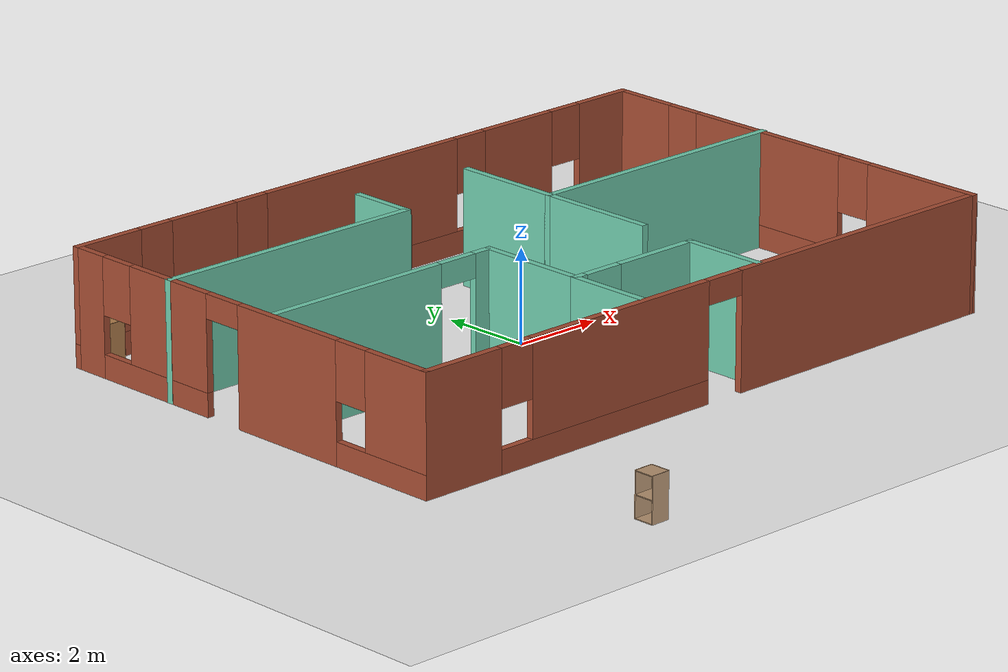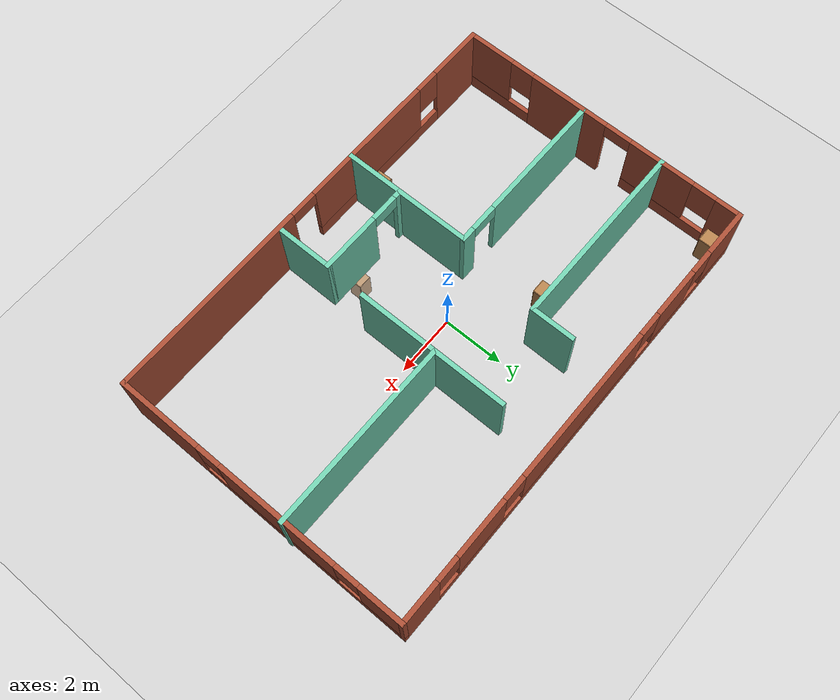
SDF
<sdf version="1.6">
 <world name="default">
  <model name="ground_plane">
   <static>1</static>
   <link name="link">
    <collision name="collision">
     <geometry><plane><normal>0 0 1</normal><size>100 100</size></plane></geometry>
     <surface><friction><ode><mu>100</mu><mu2>50</mu2></ode></friction></surface>
    </collision>
    <visual name="visual">
     <cast_shadows>0</cast_shadows>
     <geometry><plane><normal>0 0 1</normal><size>100 100</size></plane></geometry>
     <material>
      <script><uri>file://media/materials/scripts/gazebo.material</uri><name>Gazebo/Grey</name></script>
     </material>
    </visual>
   </link>
  </model>
  <model name="cabinet_1">
   <static>1</static>
   <link name="cabinet_bottom_plate">
    <inertial>
     <pose>0 0 -1 0 -0 0</pose>
     <inertia><ixx>2.05</ixx><ixy>0</ixy><ixz>0</ixz><iyy>2.05</iyy><iyz>0</iyz><izz>2.05</izz></inertia>
     <mass>25</mass>
    </inertial>
    <collision name="cabinet_bottom_plate_geom">
     <pose>0 0 0.01 0 -0 0</pose>
     <geometry><box><size>0.45 0.45 0.02</size></box></geometry>
    </collision>
    <visual name="cabinet_bottom_plate_geom_visual">
     <pose>0 0 0.01 0 -0 0</pose>
     <geometry><box><size>0.45 0.45 0.02</size></box></geometry>
     <material>
      <script><uri>file://media/materials/scripts/gazebo.material</uri><name>Gazebo/Wood</name></script>
     </material>
    </visual>
    <collision name="cabinet_bottom_plate_geom_cabinet_back_plate">
     <pose>0.235 0 0.51 0 -0 0</pose>
     <geometry><box><size>0.02 0.45 1.02</size></box></geometry>
    </collision>
    <visual name="cabinet_bottom_plate_geom_cabinet_back_plate_visual">
     <pose>0.235 0 0.51 0 -0 0</pose>
     <geometry><box><size>0.02 0.45 1.02</size></box></geometry>
     <material>
      <script><uri>file://media/materials/scripts/gazebo.material</uri><name>Gazebo/Wood</name></script>
     </material>
    </visual>
    <collision name="cabinet_bottom_plate_geom_cabinet_left_plate">
     <pose>0 0.235 0.51 0 -0 0</pose>
     <geometry><box><size>0.45 0.02 1.02</size></box></geometry>
    </collision>
    <visual name="cabinet_bottom_plate_geom_cabinet_left_plate_visual">
     <pose>0 0.235 0.51 0 -0 0</pose>
     <geometry><box><size>0.45 0.02 1.02</size></box></geometry>
     <material>
      <script><uri>file://media/materials/scripts/gazebo.material</uri><name>Gazebo/Wood</name></script>
     </material>
    </visual>
    <collision name="cabinet_bottom_plate_geom_cabinet_middle_plate">
     <pose>0 0 0.51 0 -0 0</pose>
     <geometry><box><size>0.45 0.45 0.02</size></box></geometry>
    </collision>
    <visual name="cabinet_bottom_plate_geom_cabinet_middle_plate_visual">
     <pose>0 0 0.51 0 -0 0</pose>
     <geometry><box><size>0.45 0.45 0.02</size></box></geometry>
     <material>
      <script><uri>file://media/materials/scripts/gazebo.material</uri><name>Gazebo/Wood</name></script>
     </material>
    </visual>
    <collision name="cabinet_bottom_plate_geom_cabinet_right_plate">
     <pose>0 -0.235 0.51 0 -0 0</pose>
     <geometry><box><size>0.45 0.02 1.02</size></box></geometry>
    </collision>
    <visual name="cabinet_bottom_plate_geom_cabinet_right_plate_visual">
     <pose>0 -0.235 0.51 0 -0 0</pose>
     <geometry><box><size>0.45 0.02 1.02</size></box></geometry>
     <material>
      <script><uri>file://media/materials/scripts/gazebo.material</uri><name>Gazebo/Wood</name></script>
     </material>
    </visual>
    <collision name="cabinet_bottom_plate_geom_cabinet_top_plate">
     <pose>0 0 1.01 0 -0 0</pose>
     <geometry><box><size>0.45 0.45 0.02</size></box></geometry>
    </collision>
    <visual name="cabinet_bottom_plate_geom_cabinet_top_plate_visual">
     <pose>0 0 1.01 0 -0 0</pose>
     <geometry><box><size>0.45 0.45 0.02</size></box></geometry>
     <material>
      <script><uri>file://media/materials/scripts/gazebo.material</uri><name>Gazebo/Wood</name></script>
     </material>
    </visual>
   </link>
   <pose>-6.76231 4.55095 0 0 -0 0</pose>
  </model>
  <model name="cabinet_2">
   <static>1</static>
   <link name="cabinet_bottom_plate">
    <inertial>
     <pose>0 0 -1 0 -0 0</pose>
     <inertia><ixx>2.05</ixx><ixy>0</ixy><ixz>0</ixz><iyy>2.05</iyy><iyz>0</iyz><izz>2.05</izz></inertia>
     <mass>25</mass>
    </inertial>
    <collision name="cabinet_bottom_plate_geom">
     <pose>0 0 0.01 0 -0 0</pose>
     <geometry><box><size>0.45 0.45 0.02</size></box></geometry>
    </collision>
    <visual name="cabinet_bottom_plate_geom_visual">
     <pose>0 0 0.01 0 -0 0</pose>
     <geometry><box><size>0.45 0.45 0.02</size></box></geometry>
     <material>
      <script><uri>file://media/materials/scripts/gazebo.material</uri><name>Gazebo/Wood</name></script>
     </material>
    </visual>
    <collision name="cabinet_bottom_plate_geom_cabinet_back_plate">
     <pose>0.235 0 0.51 0 -0 0</pose>
     <geometry><box><size>0.02 0.45 1.02</size></box></geometry>
    </collision>
    <visual name="cabinet_bottom_plate_geom_cabinet_back_plate_visual">
     <pose>0.235 0 0.51 0 -0 0</pose>
     <geometry><box><size>0.02 0.45 1.02</size></box></geometry>
     <material>
      <script><uri>file://media/materials/scripts/gazebo.material</uri><name>Gazebo/Wood</name></script>
     </material>
    </visual>
    <collision name="cabinet_bottom_plate_geom_cabinet_left_plate">
     <pose>0 0.235 0.51 0 -0 0</pose>
     <geometry><box><size>0.45 0.02 1.02</size></box></geometry>
    </collision>
    <visual name="cabinet_bottom_plate_geom_cabinet_left_plate_visual">
     <pose>0 0.235 0.51 0 -0 0</pose>
     <geometry><box><size>0.45 0.02 1.02</size></box></geometry>
     <material>
      <script><uri>file://media/materials/scripts/gazebo.material</uri><name>Gazebo/Wood</name></script>
     </material>
    </visual>
    <collision name="cabinet_bottom_plate_geom_cabinet_middle_plate">
     <pose>0 0 0.51 0 -0 0</pose>
     <geometry><box><size>0.45 0.45 0.02</size></box></geometry>
    </collision>
    <visual name="cabinet_bottom_plate_geom_cabinet_middle_plate_visual">
     <pose>0 0 0.51 0 -0 0</pose>
     <geometry><box><size>0.45 0.45 0.02</size></box></geometry>
     <material>
      <script><uri>file://media/materials/scripts/gazebo.material</uri><name>Gazebo/Wood</name></script>
     </material>
    </visual>
    <collision name="cabinet_bottom_plate_geom_cabinet_right_plate">
     <pose>0 -0.235 0.51 0 -0 0</pose>
     <geometry><box><size>0.45 0.02 1.02</size></box></geometry>
    </collision>
    <visual name="cabinet_bottom_plate_geom_cabinet_right_plate_visual">
     <pose>0 -0.235 0.51 0 -0 0</pose>
     <geometry><box><size>0.45 0.02 1.02</size></box></geometry>
     <material>
      <script><uri>file://media/materials/scripts/gazebo.material</uri><name>Gazebo/Wood</name></script>
     </material>
    </visual>
    <collision name="cabinet_bottom_plate_geom_cabinet_top_plate">
     <pose>0 0 1.01 0 -0 0</pose>
     <geometry><box><size>0.45 0.45 0.02</size></box></geometry>
    </collision>
    <visual name="cabinet_bottom_plate_geom_cabinet_top_plate_visual">
     <pose>0 0 1.01 0 -0 0</pose>
     <geometry><box><size>0.45 0.45 0.02</size></box></geometry>
     <material>
      <script><uri>file://media/materials/scripts/gazebo.material</uri><name>Gazebo/Wood</name></script>
     </material>
    </visual>
   </link>
   <pose>-1.99688 -4.30391 0 0 -0 0</pose>
  </model>
  <model name="cabinet_3">
   <static>1</static>
   <link name="cabinet_bottom_plate">
    <inertial>
     <pose>0 0 -1 0 -0 0</pose>
     <inertia><ixx>2.05</ixx><ixy>0</ixy><ixz>0</ixz><iyy>2.05</iyy><iyz>0</iyz><izz>2.05</izz></inertia>
     <mass>25</mass>
    </inertial>
    <collision name="cabinet_bottom_plate_geom">
     <pose>0 0 0.01 0 -0 0</pose>
     <geometry><box><size>0.45 0.45 0.02</size></box></geometry>
    </collision>
    <visual name="cabinet_bottom_plate_geom_visual">
     <pose>0 0 0.01 0 -0 0</pose>
     <geometry><box><size>0.45 0.45 0.02</size></box></geometry>
     <material>
      <script><uri>file://media/materials/scripts/gazebo.material</uri><name>Gazebo/Wood</name></script>
     </material>
    </visual>
    <collision name="cabinet_bottom_plate_geom_cabinet_back_plate">
     <pose>0.235 0 0.51 0 -0 0</pose>
     <geometry><box><size>0.02 0.45 1.02</size></box></geometry>
    </collision>
    <visual name="cabinet_bottom_plate_geom_cabinet_back_plate_visual">
     <pose>0.235 0 0.51 0 -0 0</pose>
     <geometry><box><size>0.02 0.45 1.02</size></box></geometry>
     <material>
      <script><uri>file://media/materials/scripts/gazebo.material</uri><name>Gazebo/Wood</name></script>
     </material>
    </visual>
    <collision name="cabinet_bottom_plate_geom_cabinet_left_plate">
     <pose>0 0.235 0.51 0 -0 0</pose>
     <geometry><box><size>0.45 0.02 1.02</size></box></geometry>
    </collision>
    <visual name="cabinet_bottom_plate_geom_cabinet_left_plate_visual">
     <pose>0 0.235 0.51 0 -0 0</pose>
     <geometry><box><size>0.45 0.02 1.02</size></box></geometry>
     <material>
      <script><uri>file://media/materials/scripts/gazebo.material</uri><name>Gazebo/Wood</name></script>
     </material>
    </visual>
    <collision name="cabinet_bottom_plate_geom_cabinet_middle_plate">
     <pose>0 0 0.51 0 -0 0</pose>
     <geometry><box><size>0.45 0.45 0.02</size></box></geometry>
    </collision>
    <visual name="cabinet_bottom_plate_geom_cabinet_middle_plate_visual">
     <pose>0 0 0.51 0 -0 0</pose>
     <geometry><box><size>0.45 0.45 0.02</size></box></geometry>
     <material>
      <script><uri>file://media/materials/scripts/gazebo.material</uri><name>Gazebo/Wood</name></script>
     </material>
    </visual>
    <collision name="cabinet_bottom_plate_geom_cabinet_right_plate">
     <pose>0 -0.235 0.51 0 -0 0</pose>
     <geometry><box><size>0.45 0.02 1.02</size></box></geometry>
    </collision>
    <visual name="cabinet_bottom_plate_geom_cabinet_right_plate_visual">
     <pose>0 -0.235 0.51 0 -0 0</pose>
     <geometry><box><size>0.45 0.02 1.02</size></box></geometry>
     <material>
      <script><uri>file://media/materials/scripts/gazebo.material</uri><name>Gazebo/Wood</name></script>
     </material>
    </visual>
    <collision name="cabinet_bottom_plate_geom_cabinet_top_plate">
     <pose>0 0 1.01 0 -0 0</pose>
     <geometry><box><size>0.45 0.45 0.02</size></box></geometry>
    </collision>
    <visual name="cabinet_bottom_plate_geom_cabinet_top_plate_visual">
     <pose>0 0 1.01 0 -0 0</pose>
     <geometry><box><size>0.45 0.45 0.02</size></box></geometry>
     <material>
      <script><uri>file://media/materials/scripts/gazebo.material</uri><name>Gazebo/Wood</name></script>
     </material>
    </visual>
   </link>
   <pose>0.054953 -3.59239 -2.70001 0 -0 0</pose>
  </model>
  <model name="cabinet_8">
   <static>1</static>
   <link name="cabinet_bottom_plate">
    <inertial>
     <pose>0 0 -1 0 -0 0</pose>
     <inertia><ixx>2.05</ixx><ixy>0</ixy><ixz>0</ixz><iyy>2.05</iyy><iyz>0</iyz><izz>2.05</izz></inertia>
     <mass>25</mass>
    </inertial>
    <collision name="cabinet_bottom_plate_geom">
     <pose>0 0 0.01 0 -0 0</pose>
     <geometry><box><size>0.45 0.45 0.02</size></box></geometry>
    </collision>
    <visual name="cabinet_bottom_plate_geom_visual">
     <pose>0 0 0.01 0 -0 0</pose>
     <geometry><box><size>0.45 0.45 0.02</size></box></geometry>
     <material>
      <script><uri>file://media/materials/scripts/gazebo.material</uri><name>Gazebo/Wood</name></script>
     </material>
    </visual>
    <collision name="cabinet_bottom_plate_geom_cabinet_back_plate">
     <pose>0.235 0 0.51 0 -0 0</pose>
     <geometry><box><size>0.02 0.45 1.02</size></box></geometry>
    </collision>
    <visual name="cabinet_bottom_plate_geom_cabinet_back_plate_visual">
     <pose>0.235 0 0.51 0 -0 0</pose>
     <geometry><box><size>0.02 0.45 1.02</size></box></geometry>
     <material>
      <script><uri>file://media/materials/scripts/gazebo.material</uri><name>Gazebo/Wood</name></script>
     </material>
    </visual>
    <collision name="cabinet_bottom_plate_geom_cabinet_left_plate">
     <pose>0 0.235 0.51 0 -0 0</pose>
     <geometry><box><size>0.45 0.02 1.02</size></box></geometry>
    </collision>
    <visual name="cabinet_bottom_plate_geom_cabinet_left_plate_visual">
     <pose>0 0.235 0.51 0 -0 0</pose>
     <geometry><box><size>0.45 0.02 1.02</size></box></geometry>
     <material>
      <script><uri>file://media/materials/scripts/gazebo.material</uri><name>Gazebo/Wood</name></script>
     </material>
    </visual>
    <collision name="cabinet_bottom_plate_geom_cabinet_middle_plate">
     <pose>0 0 0.51 0 -0 0</pose>
     <geometry><box><size>0.45 0.45 0.02</size></box></geometry>
    </collision>
    <visual name="cabinet_bottom_plate_geom_cabinet_middle_plate_visual">
     <pose>0 0 0.51 0 -0 0</pose>
     <geometry><box><size>0.45 0.45 0.02</size></box></geometry>
     <material>
      <script><uri>file://media/materials/scripts/gazebo.material</uri><name>Gazebo/Wood</name></script>
     </material>
    </visual>
    <collision name="cabinet_bottom_plate_geom_cabinet_right_plate">
     <pose>0 -0.235 0.51 0 -0 0</pose>
     <geometry><box><size>0.45 0.02 1.02</size></box></geometry>
    </collision>
    <visual name="cabinet_bottom_plate_geom_cabinet_right_plate_visual">
     <pose>0 -0.235 0.51 0 -0 0</pose>
     <geometry><box><size>0.45 0.02 1.02</size></box></geometry>
     <material>
      <script><uri>file://media/materials/scripts/gazebo.material</uri><name>Gazebo/Wood</name></script>
     </material>
    </visual>
    <collision name="cabinet_bottom_plate_geom_cabinet_top_plate">
     <pose>0 0 1.01 0 -0 0</pose>
     <geometry><box><size>0.45 0.45 0.02</size></box></geometry>
    </collision>
    <visual name="cabinet_bottom_plate_geom_cabinet_top_plate_visual">
     <pose>0 0 1.01 0 -0 0</pose>
     <geometry><box><size>0.45 0.45 0.02</size></box></geometry>
     <material>
      <script><uri>file://media/materials/scripts/gazebo.material</uri><name>Gazebo/Wood</name></script>
     </material>
    </visual>
   </link>
   <pose>-2.26343 1.80425 0 0 -0 0</pose>
  </model>
  <model name="buildingV1">
   <pose>0.35184 0.049711 0 0 -0 0</pose>
   <link name="Wall_22">
    <pose>-7.44478 0 0 0 0 -1.57075</pose>
    <visual name="Wall_22_Visual_0">
     <pose>-4.55966 0 1.25 0 -0 0</pose>
     <geometry><box><size>0.881202 0.15 2.5</size></box></geometry>
     <material>
      <script><uri>file://media/materials/scripts/gazebo.material</uri><name>Gazebo/Bricks</name></script>
      <ambient>0.435294 0.796078 0.67451 1</ambient>
     </material>
     <meta><layer>0</layer></meta>
    </visual>
    <collision name="Wall_22_Collision_0">
     <geometry><box><size>0.881202 0.15 2.5</size></box></geometry>
     <pose>-4.55966 0 1.25 0 -0 0</pose>
    </collision>
    <visual name="Wall_22_Visual_1">
     <pose>1.18623 0 1.25 0 -0 0</pose>
     <geometry><box><size>2.73935 0.15 2.5</size></box></geometry>
     <material>
      <script><uri>file://media/materials/scripts/gazebo.material</uri><name>Gazebo/Bricks</name></script>
      <ambient>0.435294 0.796078 0.67451 1</ambient>
     </material>
     <meta><layer>0</layer></meta>
    </visual>
    <collision name="Wall_22_Collision_1">
     <geometry><box><size>2.73935 0.15 2.5</size></box></geometry>
     <pose>1.18623 0 1.25 0 -0 0</pose>
    </collision>
    <visual name="Wall_22_Visual_2">
     <pose>-2.60125 0 0.25 0 -0 0</pose>
     <geometry><box><size>3.03561 0.15 0.5</size></box></geometry>
     <material>
      <script><uri>file://media/materials/scripts/gazebo.material</uri><name>Gazebo/Bricks</name></script>
      <ambient>0.435294 0.796078 0.67451 1</ambient>
     </material>
     <meta><layer>0</layer></meta>
    </visual>
    <collision name="Wall_22_Collision_2">
     <geometry><box><size>3.03561 0.15 0.5</size></box></geometry>
     <pose>-2.60125 0 0.25 0 -0 0</pose>
    </collision>
    <visual name="Wall_22_Visual_3">
     <pose>3.77808 0 0.25 0 -0 0</pose>
     <geometry><box><size>2.44435 0.15 0.5</size></box></geometry>
     <material>
      <script><uri>file://media/materials/scripts/gazebo.material</uri><name>Gazebo/Bricks</name></script>
      <ambient>0.435294 0.796078 0.67451 1</ambient>
     </material>
     <meta><layer>0</layer></meta>
    </visual>
    <collision name="Wall_22_Collision_3">
     <geometry><box><size>2.44435 0.15 0.5</size></box></geometry>
     <pose>3.77808 0 0.25 0 -0 0</pose>
    </collision>
    <visual name="Wall_22_Visual_4">
     <pose>-2.20125 0 1.5 0 -0 0</pose>
     <geometry><box><size>2.23561 0.15 2</size></box></geometry>
     <material>
      <script><uri>file://media/materials/scripts/gazebo.material</uri><name>Gazebo/Bricks</name></script>
      <ambient>0.435294 0.796078 0.67451 1</ambient>
     </material>
     <meta><layer>0</layer></meta>
    </visual>
    <collision name="Wall_22_Collision_4">
     <geometry><box><size>2.23561 0.15 2</size></box></geometry>
     <pose>-2.20125 0 1.5 0 -0 0</pose>
    </collision>
    <visual name="Wall_22_Visual_5">
     <pose>-2.20125 0 1.5 0 -0 0</pose>
     <geometry><box><size>2.23561 0.15 2</size></box></geometry>
     <material>
      <script><uri>file://media/materials/scripts/gazebo.material</uri><name>Gazebo/Bricks</name></script>
      <ambient>0.435294 0.796078 0.67451 1</ambient>
     </material>
     <meta><layer>0</layer></meta>
    </visual>
    <collision name="Wall_22_Collision_5">
     <geometry><box><size>2.23561 0.15 2</size></box></geometry>
     <pose>-2.20125 0 1.5 0 -0 0</pose>
    </collision>
    <visual name="Wall_22_Visual_6">
     <pose>4.17808 0 1.5 0 -0 0</pose>
     <geometry><box><size>1.64434 0.15 2</size></box></geometry>
     <material>
      <script><uri>file://media/materials/scripts/gazebo.material</uri><name>Gazebo/Bricks</name></script>
      <ambient>0.435294 0.796078 0.67451 1</ambient>
     </material>
     <meta><layer>0</layer></meta>
    </visual>
    <collision name="Wall_22_Collision_6">
     <geometry><box><size>1.64434 0.15 2</size></box></geometry>
     <pose>4.17808 0 1.5 0 -0 0</pose>
    </collision>
    <visual name="Wall_22_Visual_7">
     <pose>-3.71905 0 1.9 0 -0 0</pose>
     <geometry><box><size>0.8 0.15 1.2</size></box></geometry>
     <material>
      <script><uri>file://media/materials/scripts/gazebo.material</uri><name>Gazebo/Bricks</name></script>
      <ambient>0.435294 0.796078 0.67451 1</ambient>
     </material>
     <meta><layer>0</layer></meta>
    </visual>
    <collision name="Wall_22_Collision_7">
     <geometry><box><size>0.8 0.15 1.2</size></box></geometry>
     <pose>-3.71905 0 1.9 0 -0 0</pose>
    </collision>
    <visual name="Wall_22_Visual_8">
     <pose>2.95591 0 1.9 0 -0 0</pose>
     <geometry><box><size>0.8 0.15 1.2</size></box></geometry>
     <material>
      <script><uri>file://media/materials/scripts/gazebo.material</uri><name>Gazebo/Bricks</name></script>
      <ambient>0.435294 0.796078 0.67451 1</ambient>
     </material>
     <meta><layer>0</layer></meta>
    </visual>
    <collision name="Wall_22_Collision_8">
     <geometry><box><size>0.8 0.15 1.2</size></box></geometry>
     <pose>2.95591 0 1.9 0 -0 0</pose>
    </collision>
    <visual name="Wall_22_Visual_9">
     <pose>-0.633441 0 2.25 0 -0 0</pose>
     <geometry><box><size>0.9 0.15 0.5</size></box></geometry>
     <material>
      <script><uri>file://media/materials/scripts/gazebo.material</uri><name>Gazebo/Bricks</name></script>
      <ambient>0.435294 0.796078 0.67451 1</ambient>
     </material>
     <meta><layer>0</layer></meta>
    </visual>
    <collision name="Wall_22_Collision_9">
     <geometry><box><size>0.9 0.15 0.5</size></box></geometry>
     <pose>-0.633441 0 2.25 0 -0 0</pose>
    </collision>
    <visual name="Wall_22_Visual_10">
     <pose>-0.633441 0 2.25 0 -0 0</pose>
     <geometry><box><size>0.9 0.15 0.5</size></box></geometry>
     <material>
      <script><uri>file://media/materials/scripts/gazebo.material</uri><name>Gazebo/Bricks</name></script>
      <ambient>0.435294 0.796078 0.67451 1</ambient>
     </material>
     <meta><layer>0</layer></meta>
    </visual>
    <collision name="Wall_22_Collision_10">
     <geometry><box><size>0.9 0.15 0.5</size></box></geometry>
     <pose>-0.633441 0 2.25 0 -0 0</pose>
    </collision>
   </link>
   <link name="Wall_23">
    <pose>-0.01953 -4.92526 0 0 -0 0</pose>
    <visual name="Wall_23_Visual_0">
     <pose>-6.54805 0 1.25 0 -0 0</pose>
     <geometry><box><size>1.9039 0.15 2.5</size></box></geometry>
     <material>
      <script><uri>file://media/materials/scripts/gazebo.material</uri><name>Gazebo/Bricks</name></script>
      <ambient>0.435294 0.796078 0.67451 1</ambient>
     </material>
     <meta><layer>0</layer></meta>
    </visual>
    <collision name="Wall_23_Collision_0">
     <geometry><box><size>1.9039 0.15 2.5</size></box></geometry>
     <pose>-6.54805 0 1.25 0 -0 0</pose>
    </collision>
    <visual name="Wall_23_Visual_1">
     <pose>4.13151 0 1.25 0 -0 0</pose>
     <geometry><box><size>6.73697 0.15 2.5</size></box></geometry>
     <material>
      <script><uri>file://media/materials/scripts/gazebo.material</uri><name>Gazebo/Bricks</name></script>
      <ambient>0.435294 0.796078 0.67451 1</ambient>
     </material>
     <meta><layer>0</layer></meta>
    </visual>
    <collision name="Wall_23_Collision_1">
     <geometry><box><size>6.73697 0.15 2.5</size></box></geometry>
     <pose>4.13151 0 1.25 0 -0 0</pose>
    </collision>
    <visual name="Wall_23_Visual_2">
     <pose>-2.86654 0 0.25 0 -0 0</pose>
     <geometry><box><size>5.45913 0.15 0.5</size></box></geometry>
     <material>
      <script><uri>file://media/materials/scripts/gazebo.material</uri><name>Gazebo/Bricks</name></script>
      <ambient>0.435294 0.796078 0.67451 1</ambient>
     </material>
     <meta><layer>0</layer></meta>
    </visual>
    <collision name="Wall_23_Collision_2">
     <geometry><box><size>5.45913 0.15 0.5</size></box></geometry>
     <pose>-2.86654 0 0.25 0 -0 0</pose>
    </collision>
    <visual name="Wall_23_Visual_3">
     <pose>-2.46654 0 1.5 0 -0 0</pose>
     <geometry><box><size>4.65913 0.15 2</size></box></geometry>
     <material>
      <script><uri>file://media/materials/scripts/gazebo.material</uri><name>Gazebo/Bricks</name></script>
      <ambient>0.435294 0.796078 0.67451 1</ambient>
     </material>
     <meta><layer>0</layer></meta>
    </visual>
    <collision name="Wall_23_Collision_3">
     <geometry><box><size>4.65913 0.15 2</size></box></geometry>
     <pose>-2.46654 0 1.5 0 -0 0</pose>
    </collision>
    <visual name="Wall_23_Visual_4">
     <pose>-5.1961 0 1.9 0 -0 0</pose>
     <geometry><box><size>0.8 0.15 1.2</size></box></geometry>
     <material>
      <script><uri>file://media/materials/scripts/gazebo.material</uri><name>Gazebo/Bricks</name></script>
      <ambient>0.435294 0.796078 0.67451 1</ambient>
     </material>
     <meta><layer>0</layer></meta>
    </visual>
    <collision name="Wall_23_Collision_4">
     <geometry><box><size>0.8 0.15 1.2</size></box></geometry>
     <pose>-5.1961 0 1.9 0 -0 0</pose>
    </collision>
    <visual name="Wall_23_Visual_5">
     <pose>0.313028 0 2.25 0 -0 0</pose>
     <geometry><box><size>0.9 0.15 0.5</size></box></geometry>
     <material>
      <script><uri>file://media/materials/scripts/gazebo.material</uri><name>Gazebo/Bricks</name></script>
      <ambient>0.435294 0.796078 0.67451 1</ambient>
     </material>
     <meta><layer>0</layer></meta>
    </visual>
    <collision name="Wall_23_Collision_5">
     <geometry><box><size>0.9 0.15 0.5</size></box></geometry>
     <pose>0.313028 0 2.25 0 -0 0</pose>
    </collision>
   </link>
   <link name="Wall_24">
    <pose>7.40522 -0.000216 0 0 -0 1.57085</pose>
    <visual name="Wall_24_Visual_0">
     <pose>-3.58137 0 1.25 0 -0 0</pose>
     <geometry><box><size>2.83735 0.15 2.5</size></box></geometry>
     <material>
      <script><uri>file://media/materials/scripts/gazebo.material</uri><name>Gazebo/Bricks</name></script>
      <ambient>0.435294 0.796078 0.67451 1</ambient>
     </material>
     <meta><layer>0</layer></meta>
    </visual>
    <collision name="Wall_24_Collision_0">
     <geometry><box><size>2.83735 0.15 2.5</size></box></geometry>
     <pose>-3.58137 0 1.25 0 -0 0</pose>
    </collision>
    <visual name="Wall_24_Visual_1">
     <pose>1.41867 0 0.25 0 -0 0</pose>
     <geometry><box><size>7.16273 0.15 0.5</size></box></geometry>
     <material>
      <script><uri>file://media/materials/scripts/gazebo.material</uri><name>Gazebo/Bricks</name></script>
      <ambient>0.435294 0.796078 0.67451 1</ambient>
     </material>
     <meta><layer>0</layer></meta>
    </visual>
    <collision name="Wall_24_Collision_1">
     <geometry><box><size>7.16273 0.15 0.5</size></box></geometry>
     <pose>1.41867 0 0.25 0 -0 0</pose>
    </collision>
    <visual name="Wall_24_Visual_2">
     <pose>0.659093 0 1.5 0 -0 0</pose>
     <geometry><box><size>4.04357 0.15 2</size></box></geometry>
     <material>
      <script><uri>file://media/materials/scripts/gazebo.material</uri><name>Gazebo/Bricks</name></script>
      <ambient>0.435294 0.796078 0.67451 1</ambient>
     </material>
     <meta><layer>0</layer></meta>
    </visual>
    <collision name="Wall_24_Collision_2">
     <geometry><box><size>4.04357 0.15 2</size></box></geometry>
     <pose>0.659093 0 1.5 0 -0 0</pose>
    </collision>
    <visual name="Wall_24_Visual_3">
     <pose>4.24046 0 1.5 0 -0 0</pose>
     <geometry><box><size>1.51916 0.15 2</size></box></geometry>
     <material>
      <script><uri>file://media/materials/scripts/gazebo.material</uri><name>Gazebo/Bricks</name></script>
      <ambient>0.435294 0.796078 0.67451 1</ambient>
     </material>
     <meta><layer>0</layer></meta>
    </visual>
    <collision name="Wall_24_Collision_3">
     <geometry><box><size>1.51916 0.15 2</size></box></geometry>
     <pose>4.24046 0 1.5 0 -0 0</pose>
    </collision>
    <visual name="Wall_24_Visual_4">
     <pose>-1.76269 0 1.9 0 -0 0</pose>
     <geometry><box><size>0.8 0.15 1.2</size></box></geometry>
     <material>
      <script><uri>file://media/materials/scripts/gazebo.material</uri><name>Gazebo/Bricks</name></script>
      <ambient>0.435294 0.796078 0.67451 1</ambient>
     </material>
     <meta><layer>0</layer></meta>
    </visual>
    <collision name="Wall_24_Collision_4">
     <geometry><box><size>0.8 0.15 1.2</size></box></geometry>
     <pose>-1.76269 0 1.9 0 -0 0</pose>
    </collision>
    <visual name="Wall_24_Visual_5">
     <pose>3.08088 0 1.9 0 -0 0</pose>
     <geometry><box><size>0.8 0.15 1.2</size></box></geometry>
     <material>
      <script><uri>file://media/materials/scripts/gazebo.material</uri><name>Gazebo/Bricks</name></script>
      <ambient>0.435294 0.796078 0.67451 1</ambient>
     </material>
     <meta><layer>0</layer></meta>
    </visual>
    <collision name="Wall_24_Collision_5">
     <geometry><box><size>0.8 0.15 1.2</size></box></geometry>
     <pose>3.08088 0 1.9 0 -0 0</pose>
    </collision>
   </link>
   <link name="Wall_25">
    <pose>-0.020025 4.92504 0 0 -0 3.14156</pose>
    <visual name="Wall_25_Visual_0">
     <pose>-6.78709 0 1.25 0 -0 0</pose>
     <geometry><box><size>1.42582 0.15 2.5</size></box></geometry>
     <material>
      <script><uri>file://media/materials/scripts/gazebo.material</uri><name>Gazebo/Bricks</name></script>
      <ambient>0.435294 0.796078 0.67451 1</ambient>
     </material>
     <meta><layer>0</layer></meta>
    </visual>
    <collision name="Wall_25_Collision_0">
     <geometry><box><size>1.42582 0.15 2.5</size></box></geometry>
     <pose>-6.78709 0 1.25 0 -0 0</pose>
    </collision>
    <visual name="Wall_25_Visual_1">
     <pose>0.712913 0 0.25 0 -0 0</pose>
     <geometry><box><size>13.5742 0.15 0.5</size></box></geometry>
     <material>
      <script><uri>file://media/materials/scripts/gazebo.material</uri><name>Gazebo/Bricks</name></script>
      <ambient>0.435294 0.796078 0.67451 1</ambient>
     </material>
     <meta><layer>0</layer></meta>
    </visual>
    <collision name="Wall_25_Collision_1">
     <geometry><box><size>13.5742 0.15 0.5</size></box></geometry>
     <pose>0.712913 0 0.25 0 -0 0</pose>
    </collision>
    <visual name="Wall_25_Visual_2">
     <pose>-4.31757 0 1.5 0 -0 0</pose>
     <geometry><box><size>1.91322 0.15 2</size></box></geometry>
     <material>
      <script><uri>file://media/materials/scripts/gazebo.material</uri><name>Gazebo/Bricks</name></script>
      <ambient>0.435294 0.796078 0.67451 1</ambient>
     </material>
     <meta><layer>0</layer></meta>
    </visual>
    <collision name="Wall_25_Collision_2">
     <geometry><box><size>1.91322 0.15 2</size></box></geometry>
     <pose>-4.31757 0 1.5 0 -0 0</pose>
    </collision>
    <visual name="Wall_25_Visual_3">
     <pose>0.031566 0 1.5 0 -0 0</pose>
     <geometry><box><size>5.18504 0.15 2</size></box></geometry>
     <material>
      <script><uri>file://media/materials/scripts/gazebo.material</uri><name>Gazebo/Bricks</name></script>
      <ambient>0.435294 0.796078 0.67451 1</ambient>
     </material>
     <meta><layer>0</layer></meta>
    </visual>
    <collision name="Wall_25_Collision_3">
     <geometry><box><size>5.18504 0.15 2</size></box></geometry>
     <pose>0.031566 0 1.5 0 -0 0</pose>
    </collision>
    <visual name="Wall_25_Visual_4">
     <pose>4.26099 0 1.5 0 -0 0</pose>
     <geometry><box><size>1.67381 0.15 2</size></box></geometry>
     <material>
      <script><uri>file://media/materials/scripts/gazebo.material</uri><name>Gazebo/Bricks</name></script>
      <ambient>0.435294 0.796078 0.67451 1</ambient>
     </material>
     <meta><layer>0</layer></meta>
    </visual>
    <collision name="Wall_25_Collision_4">
     <geometry><box><size>1.67381 0.15 2</size></box></geometry>
     <pose>4.26099 0 1.5 0 -0 0</pose>
    </collision>
    <visual name="Wall_25_Visual_5">
     <pose>6.69895 0 1.5 0 -0 0</pose>
     <geometry><box><size>1.6021 0.15 2</size></box></geometry>
     <material>
      <script><uri>file://media/materials/scripts/gazebo.material</uri><name>Gazebo/Bricks</name></script>
      <ambient>0.435294 0.796078 0.67451 1</ambient>
     </material>
     <meta><layer>0</layer></meta>
    </visual>
    <collision name="Wall_25_Collision_5">
     <geometry><box><size>1.6021 0.15 2</size></box></geometry>
     <pose>6.69895 0 1.5 0 -0 0</pose>
    </collision>
    <visual name="Wall_25_Visual_6">
     <pose>-5.67417 0 1.9 0 -0 0</pose>
     <geometry><box><size>0.8 0.15 1.2</size></box></geometry>
     <material>
      <script><uri>file://media/materials/scripts/gazebo.material</uri><name>Gazebo/Bricks</name></script>
      <ambient>0.435294 0.796078 0.67451 1</ambient>
     </material>
     <meta><layer>0</layer></meta>
    </visual>
    <collision name="Wall_25_Collision_6">
     <geometry><box><size>0.8 0.15 1.2</size></box></geometry>
     <pose>-5.67417 0 1.9 0 -0 0</pose>
    </collision>
    <visual name="Wall_25_Visual_7">
     <pose>-2.96096 0 1.9 0 -0 0</pose>
     <geometry><box><size>0.8 0.15 1.2</size></box></geometry>
     <material>
      <script><uri>file://media/materials/scripts/gazebo.material</uri><name>Gazebo/Bricks</name></script>
      <ambient>0.435294 0.796078 0.67451 1</ambient>
     </material>
     <meta><layer>0</layer></meta>
    </visual>
    <collision name="Wall_25_Collision_7">
     <geometry><box><size>0.8 0.15 1.2</size></box></geometry>
     <pose>-2.96096 0 1.9 0 -0 0</pose>
    </collision>
    <visual name="Wall_25_Visual_8">
     <pose>3.02409 0 1.9 0 -0 0</pose>
     <geometry><box><size>0.8 0.15 1.2</size></box></geometry>
     <material>
      <script><uri>file://media/materials/scripts/gazebo.material</uri><name>Gazebo/Bricks</name></script>
      <ambient>0.435294 0.796078 0.67451 1</ambient>
     </material>
     <meta><layer>0</layer></meta>
    </visual>
    <collision name="Wall_25_Collision_8">
     <geometry><box><size>0.8 0.15 1.2</size></box></geometry>
     <pose>3.02409 0 1.9 0 -0 0</pose>
    </collision>
    <visual name="Wall_25_Visual_9">
     <pose>5.4979 0 1.9 0 -0 0</pose>
     <geometry><box><size>0.8 0.15 1.2</size></box></geometry>
     <material>
      <script><uri>file://media/materials/scripts/gazebo.material</uri><name>Gazebo/Bricks</name></script>
      <ambient>0.435294 0.796078 0.67451 1</ambient>
     </material>
     <meta><layer>0</layer></meta>
    </visual>
    <collision name="Wall_25_Collision_9">
     <geometry><box><size>0.8 0.15 1.2</size></box></geometry>
     <pose>5.4979 0 1.9 0 -0 0</pose>
    </collision>
   </link>
   <link name="Wall_27">
    <collision name="Wall_27_Collision">
     <geometry><box><size>2 0.15 2.5</size></box></geometry>
     <pose>0 0 1.25 0 -0 0</pose>
    </collision>
    <visual name="Wall_27_Visual">
     <pose>0 0 1.25 0 -0 0</pose>
     <geometry><box><size>2 0.15 2.5</size></box></geometry>
     <material>
      <script><uri>file://media/materials/scripts/gazebo.material</uri><name>Gazebo/Grey</name></script>
      <ambient>0.435294 0.796078 0.67451 1</ambient>
     </material>
     <meta><layer>0</layer></meta>
    </visual>
    <pose>-1.80484 -3.98656 0 0 -0 1.5708</pose>
   </link>
   <link name="Wall_28">
    <pose>-0.254843 -3.06156 0 0 -0 0</pose>
    <visual name="Wall_28_Visual_0">
     <pose>-1.46591 0 1.25 0 -0 0</pose>
     <geometry><box><size>0.318179 0.15 2.5</size></box></geometry>
     <material>
      <script><uri>file://media/materials/scripts/gazebo.material</uri><name>Gazebo/Grey</name></script>
      <ambient>0.435294 0.796078 0.67451 1</ambient>
     </material>
     <meta><layer>0</layer></meta>
    </visual>
    <collision name="Wall_28_Collision_0">
     <geometry><box><size>0.318179 0.15 2.5</size></box></geometry>
     <pose>-1.46591 0 1.25 0 -0 0</pose>
    </collision>
    <visual name="Wall_28_Visual_1">
     <pose>0.609089 0 1.25 0 -0 0</pose>
     <geometry><box><size>2.03182 0.15 2.5</size></box></geometry>
     <material>
      <script><uri>file://media/materials/scripts/gazebo.material</uri><name>Gazebo/Grey</name></script>
      <ambient>0.435294 0.796078 0.67451 1</ambient>
     </material>
     <meta><layer>0</layer></meta>
    </visual>
    <collision name="Wall_28_Collision_1">
     <geometry><box><size>2.03182 0.15 2.5</size></box></geometry>
     <pose>0.609089 0 1.25 0 -0 0</pose>
    </collision>
    <visual name="Wall_28_Visual_2">
     <pose>-0.856821 0 2.25 0 -0 0</pose>
     <geometry><box><size>0.9 0.15 0.5</size></box></geometry>
     <material>
      <script><uri>file://media/materials/scripts/gazebo.material</uri><name>Gazebo/Grey</name></script>
      <ambient>0.435294 0.796078 0.67451 1</ambient>
     </material>
     <meta><layer>0</layer></meta>
    </visual>
    <collision name="Wall_28_Collision_2">
     <geometry><box><size>0.9 0.15 0.5</size></box></geometry>
     <pose>-0.856821 0 2.25 0 -0 0</pose>
    </collision>
   </link>
   <link name="Wall_29">
    <collision name="Wall_29_Collision">
     <geometry><box><size>2 0.15 2.5</size></box></geometry>
     <pose>0 0 1.25 0 -0 0</pose>
    </collision>
    <visual name="Wall_29_Visual">
     <pose>0 0 1.25 0 -0 0</pose>
     <geometry><box><size>2 0.15 2.5</size></box></geometry>
     <material>
      <script><uri>file://media/materials/scripts/gazebo.material</uri><name>Gazebo/Grey</name></script>
      <ambient>0.435294 0.796078 0.67451 1</ambient>
     </material>
     <meta><layer>0</layer></meta>
    </visual>
    <pose>1.29516 -3.98656 0 0 0 -1.5708</pose>
   </link>
   <link name="Wall_31">
    <pose>-4.60484 -0.666194 0 0 -0 0</pose>
    <visual name="Wall_31_Visual_0">
     <pose>-0.701734 0 1.25 0 -0 0</pose>
     <geometry><box><size>4.34653 0.15 2.5</size></box></geometry>
     <material>
      <script><uri>file://media/materials/scripts/gazebo.material</uri><name>Gazebo/Grey</name></script>
      <ambient>0.435294 0.796078 0.67451 1</ambient>
     </material>
     <meta><layer>0</layer></meta>
    </visual>
    <collision name="Wall_31_Collision_0">
     <geometry><box><size>4.34653 0.15 2.5</size></box></geometry>
     <pose>-0.701734 0 1.25 0 -0 0</pose>
    </collision>
    <visual name="Wall_31_Visual_1">
     <pose>2.62327 0 1.25 0 -0 0</pose>
     <geometry><box><size>0.503469 0.15 2.5</size></box></geometry>
     <material>
      <script><uri>file://media/materials/scripts/gazebo.material</uri><name>Gazebo/Grey</name></script>
      <ambient>0.435294 0.796078 0.67451 1</ambient>
     </material>
     <meta><layer>0</layer></meta>
    </visual>
    <collision name="Wall_31_Collision_1">
     <geometry><box><size>0.503469 0.15 2.5</size></box></geometry>
     <pose>2.62327 0 1.25 0 -0 0</pose>
    </collision>
    <visual name="Wall_31_Visual_2">
     <pose>1.92153 0 2.25 0 -0 0</pose>
     <geometry><box><size>0.9 0.15 0.5</size></box></geometry>
     <material>
      <script><uri>file://media/materials/scripts/gazebo.material</uri><name>Gazebo/Grey</name></script>
      <ambient>0.435294 0.796078 0.67451 1</ambient>
     </material>
     <meta><layer>0</layer></meta>
    </visual>
    <collision name="Wall_31_Collision_2">
     <geometry><box><size>0.9 0.15 0.5</size></box></geometry>
     <pose>1.92153 0 2.25 0 -0 0</pose>
    </collision>
   </link>
   <link name="Wall_32">
    <collision name="Wall_32_Collision">
     <geometry><box><size>2.53781 0.15 2.5</size></box></geometry>
     <pose>0 0 1.25 0 -0 0</pose>
    </collision>
    <visual name="Wall_32_Visual">
     <pose>0 0 1.25 0 -0 0</pose>
     <geometry><box><size>2.53781 0.15 2.5</size></box></geometry>
     <material>
      <script><uri>file://media/materials/scripts/gazebo.material</uri><name>Gazebo/Grey</name></script>
      <ambient>0.435294 0.796078 0.67451 1</ambient>
     </material>
     <meta><layer>0</layer></meta>
    </visual>
    <pose>-1.80484 -1.86766 0 0 0 -1.5708</pose>
   </link>
   <link name="Wall_36">
    <collision name="Wall_36_Collision">
     <geometry><box><size>6.25 0.15 2.5</size></box></geometry>
     <pose>0 0 1.25 0 -0 0</pose>
    </collision>
    <visual name="Wall_36_Visual">
     <pose>0 0 1.25 0 -0 0</pose>
     <geometry><box><size>6.25 0.15 2.5</size></box></geometry>
     <material>
      <script><uri>file://media/materials/scripts/gazebo.material</uri><name>Gazebo/Grey</name></script>
      <ambient>0.435294 0.796078 0.67451 1</ambient>
     </material>
     <meta><layer>0</layer></meta>
    </visual>
    <pose>4.39872 0.898449 0 0 -0 3.14159</pose>
   </link>
   <link name="Wall_37">
    <collision name="Wall_37_Collision">
     <geometry><box><size>2.5 0.15 2.5</size></box></geometry>
     <pose>0 0 1.25 0 -0 0</pose>
    </collision>
    <visual name="Wall_37_Visual">
     <pose>0 0 1.25 0 -0 0</pose>
     <geometry><box><size>2.5 0.15 2.5</size></box></geometry>
     <material>
      <script><uri>file://media/materials/scripts/gazebo.material</uri><name>Gazebo/Grey</name></script>
      <ambient>0.435294 0.796078 0.67451 1</ambient>
     </material>
     <meta><layer>0</layer></meta>
    </visual>
    <pose>1.34872 2.07345 0 0 -0 1.5708</pose>
   </link>
   <link name="Wall_39">
    <collision name="Wall_39_Collision">
     <geometry><box><size>2.75 0.15 2.5</size></box></geometry>
     <pose>0 0 1.25 0 -0 0</pose>
    </collision>
    <visual name="Wall_39_Visual">
     <pose>0 0 1.25 0 -0 0</pose>
     <geometry><box><size>2.75 0.15 2.5</size></box></geometry>
     <material>
      <script><uri>file://media/materials/scripts/gazebo.material</uri><name>Gazebo/Grey</name></script>
      <ambient>0.435294 0.796078 0.67451 1</ambient>
     </material>
     <meta><layer>0</layer></meta>
    </visual>
    <pose>1.34872 -0.401551 0 0 0 -1.5708</pose>
   </link>
   <link name="Wall_41">
    <collision name="Wall_41_Collision">
     <geometry><box><size>6.25 0.15 2.5</size></box></geometry>
     <pose>0 0 1.25 0 -0 0</pose>
    </collision>
    <visual name="Wall_41_Visual">
     <pose>0 0 1.25 0 -0 0</pose>
     <geometry><box><size>6.25 0.15 2.5</size></box></geometry>
     <material>
      <script><uri>file://media/materials/scripts/gazebo.material</uri><name>Gazebo/Grey</name></script>
      <ambient>0.435294 0.796078 0.67451 1</ambient>
     </material>
     <meta><layer>0</layer></meta>
    </visual>
    <pose>-4.39872 2.18324 0 0 -0 0</pose>
   </link>
   <link name="Wall_42">
    <collision name="Wall_42_Collision">
     <geometry><box><size>1.5 0.15 2.5</size></box></geometry>
     <pose>0 0 1.25 0 -0 0</pose>
    </collision>
    <visual name="Wall_42_Visual">
     <pose>0 0 1.25 0 -0 0</pose>
     <geometry><box><size>1.5 0.15 2.5</size></box></geometry>
     <material>
      <script><uri>file://media/materials/scripts/gazebo.material</uri><name>Gazebo/Grey</name></script>
      <ambient>0.435294 0.796078 0.67451 1</ambient>
     </material>
     <meta><layer>0</layer></meta>
    </visual>
    <pose>-1.34872 2.85824 0 0 -0 1.5708</pose>
   </link>
   <static>1</static>
  </model>
 </world>
</sdf>
